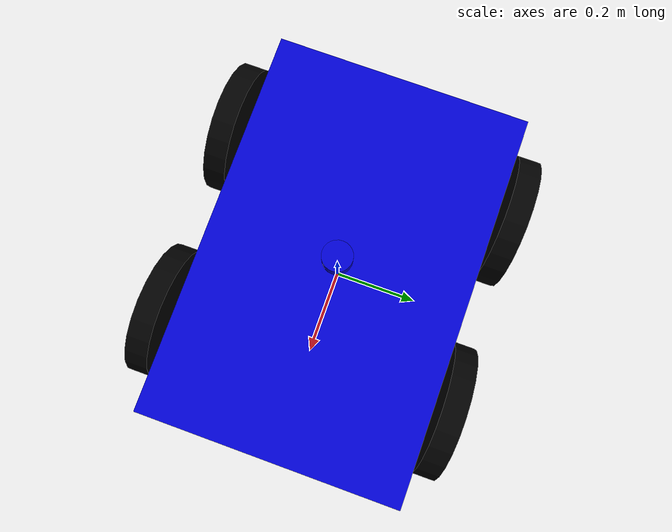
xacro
<?xml version="1.0"?>
<robot xmlns:xacro="http://www.ros.org/wiki/xacro" name="ibex">

    <xacro:property name="base_length" value="0.9" />
    <xacro:property name="base_width" value="0.6" />
    <xacro:property name="base_height" value="0.1" />
    <xacro:property name="wheel_radius" value="0.15" />
    <xacro:property name="wheel_thickness" value="0.05" />
    <xacro:property name="wheel_y_span" value="${(base_width + wheel_thickness) / 2.0}" />
    <xacro:property name="wheel_axle_x_offset" value="${base_length / 4.0}" />
    <xacro:property name="chassis_mass" value="5.0" />
    <xacro:property name="wheel_mass" value="0.5" />

    <material name="blue">
        <color rgba="0.0 0.0 0.8 1.0" />
    </material>

    <material name="black">
        <color rgba="0.0 0.0 0.0 1.0" />
    </material>

    <link name="base_footprint" />

    <link name="base_link">
        <inertial>
            <mass value="${chassis_mass}" />
            <origin xyz="0 0 ${base_height / 2.0}" rpy="0 0 0" />
            <inertia ixx="${(chassis_mass/12.0) * (base_height*base_height + base_width*base_width)}"
                     ixy="0.0"
                     ixz="0.0"
                     iyy="${(chassis_mass/12.0) * (base_length*base_length + base_height*base_height)}"
                     iyz="0.0"
                     izz="${(chassis_mass/12.0) * (base_length*base_length + base_width*base_width)}" />
        </inertial>
        <visual>
            <geometry>
                <box size="${base_length} ${base_width} ${base_height}" />
            </geometry>
            <origin xyz="0 0 ${base_height / 2.0}" rpy="0 0 0" />
            <material name="blue" />
        </visual>
        <collision>
            <geometry>
                <box size="${base_length} ${base_width} ${base_height}" />
            </geometry>
            <origin xyz="0 0 ${base_height / 2.0}" rpy="0 0 0" />
        </collision>
    </link>

    <xacro:macro name="wheel_macro" params="name_prefix x_offset y_offset">
        <link name="${name_prefix}_wheel_link">
        <inertial>
            <mass value="${wheel_mass}" />
            <origin xyz="0 0 0" rpy="0 0 0" />
            <inertia ixx="${(wheel_mass/12.0) * (3*wheel_radius*wheel_radius + wheel_thickness*wheel_thickness)}"
                        ixy="0.0" ixz="0.0"
                        iyy="${(wheel_mass/2.0) * (wheel_radius*wheel_radius)}"
                        iyz="0.0"
                        izz="${(wheel_mass/12.0) * (3*wheel_radius*wheel_radius + wheel_thickness*wheel_thickness)}" />
        </inertial>
        <visual>
            <geometry>
                <cylinder radius="${wheel_radius}" length="${wheel_thickness}" />
            </geometry>
            <origin xyz="0 0 0" rpy="${pi / 2.0} 0 0" />
            <material name="black" />
        </visual>
        <collision>
                <geometry>
                    <cylinder radius="${wheel_radius}" length="${wheel_thickness}" />
                </geometry>
                <origin xyz="0 0 0" rpy="${pi / 2.0} 0 0" />
            </collision>
    </link>

            <joint name="${name_prefix}_wheel_joint" type="continuous">
        <parent link="base_link" />
        <child link="${name_prefix}_wheel_link" />
        <origin xyz="${x_offset} ${y_offset} ${base_height / 2.0}" rpy="0 0 0" />
                    <axis xyz="0 1 0" />
    </joint>
    </xacro:macro>

    <joint name="base_joint" type="fixed">
        <parent link="base_footprint" />
        <child link="base_link" />
        <origin xyz="0 0 ${wheel_radius - (base_height / 2.0)}" rpy="0 0 0"/>
    </joint>

        <link name="imu_link">
        <inertial>
            <origin xyz="-0.00552433659106688 0.000168210391520346 0.000514000497342681" rpy="0 0 0" />
            <mass value="0.000528415362211671" />
            <inertia ixx="1.46176048428261E-08" ixy="1.40015117949421E-10" ixz="-1.99633872937403E-12"
                    iyy="8.59662482954888E-09" iyz="7.52375112767959E-12"
                    izz="2.30279421279312E-08" />
        </inertial>

        <visual>
            <origin xyz="0 0 0" rpy="0 0 0" />
            <geometry>
                <box size="0.1 0.1 0.05"/>
            </geometry>
            <material name="blue" />
        </visual>

        <collision>
            <origin xyz="0 0 0" rpy="0 0 0" />
            <geometry>
                <box size="0.1 0.1 0.05"/>
            </geometry>
        </collision>
    </link>

    <joint name="imu_joint" type="fixed">
        <origin xyz="0 0 0.0698986241758014" rpy="0 0 0" />
        <parent link="base_link" />
        <child link="imu_link" />
        <axis xyz="0 0 0" />
    </joint>

    <link name="laser_link">
        <inertial>
            <origin xyz="-0.011945780406062 -0.000381929217680526 -0.0170649378129477" rpy="0 0 0" />
            <mass value="0.073084435549317" />
            <inertia ixx="1.96074931730795E-05" ixy="-3.62091076640009E-07" ixz="4.28230084046735E-07"
                    iyy="2.40983835136327E-05" iyz="1.50180909250652E-08"
                    izz="4.14184164228595E-05" />
        </inertial>

        <visual>
            <origin xyz="0 0 0" rpy="0 0 0" />
            <geometry>
            <cylinder radius="0.035" length="0.05"/>
            </geometry>
            <material name="blue"/>
        </visual>

        <collision>
            <origin xyz="0 0 0" rpy="0 0 0" />
            <geometry>
            <cylinder radius="0.035" length="0.05"/>
            </geometry>
        </collision>
    </link>

    <joint name="laser_joint" type="fixed">
        <origin xyz="-0.0050526 -0.0023221 0.1208" rpy="0 0 3.14" />
        <parent link="base_link" />
        <child link="laser_link" />
        <axis xyz="0 0 0" />
    </joint>

    <xacro:wheel_macro name_prefix="rear_right"
                        x_offset="${-wheel_axle_x_offset}"
                        y_offset="${-wheel_y_span}" />

    <xacro:wheel_macro name_prefix="rear_left"
                        x_offset="${-wheel_axle_x_offset}"
                        y_offset="${wheel_y_span}" />

        <xacro:wheel_macro name_prefix="front_right"
                        x_offset="${wheel_axle_x_offset}"
                        y_offset="${-wheel_y_span}" />

    <xacro:wheel_macro name_prefix="front_left"
                        x_offset="${wheel_axle_x_offset}"
                        y_offset="${wheel_y_span}" />

</robot>
